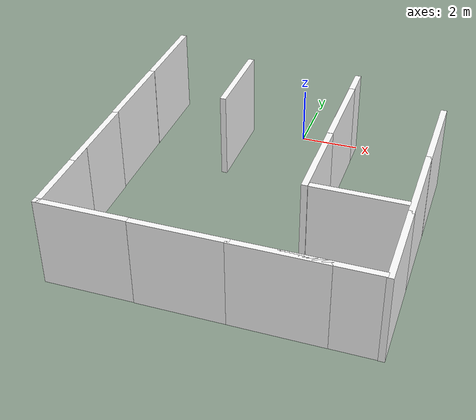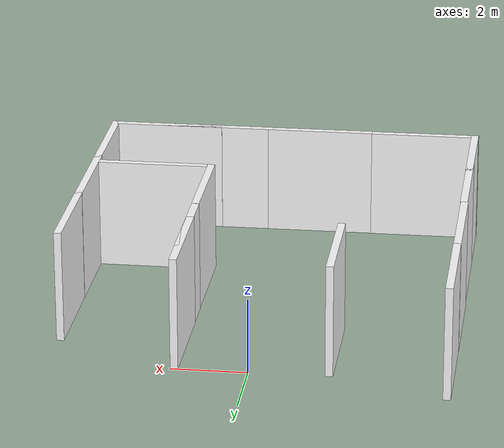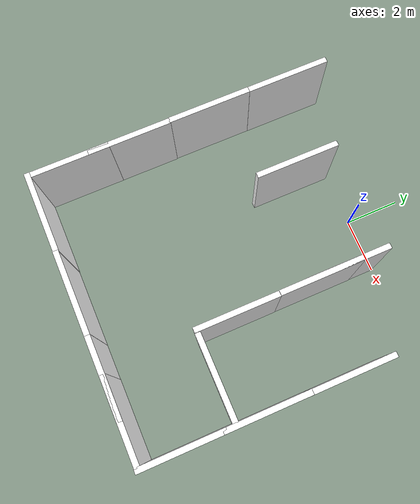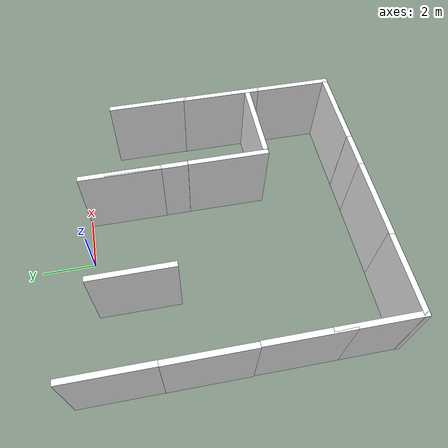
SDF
<sdf version="1.6">
 <world name="default">
  <model name="brick_box_3x0_2x3_0_clone_2_clone_1">
   <link name="chassis">
    <pose>0 0 1.5 0 -0 0</pose>
    <velocity_decay><linear>0</linear><angular>0</angular></velocity_decay>
    <inertial>
     <mass>1</mass>
     <inertia><ixx>1</ixx><ixy>0</ixy><ixz>0</ixz><iyy>1</iyy><iyz>0</iyz><izz>1</izz></inertia>
    </inertial>
    <visual name="visual">
     <geometry>
      <mesh><uri>model://brick_box_3x1x3/meshes/simple_box.dae</uri><scale>3 0.2 3</scale></mesh>
     </geometry>
     <material>
      <script>
       <uri>model://brick_box_3x1x3/materials/scripts</uri>
       <uri>model://brick_box_3x1x3/materials/textures</uri>
       <name>BrickBox/Diffuse</name>
      </script>
      <shader type="vertex"><normal_map>__default__</normal_map></shader>
      <ambient>1 1 1 1</ambient>
      <diffuse>1 1 1 1</diffuse>
      <specular>0 0 0 1</specular>
      <emissive>0 0 0 1</emissive>
     </material>
    </visual>
    <collision name="collision">
     <geometry><box><size>3 0.2 3</size></box></geometry>
     <surface>
      <friction>
       <ode><mu>1</mu><mu2>1</mu2><fdir1>0 0 0</fdir1><slip1>0</slip1><slip2>0</slip2></ode>
       <torsional>
        <coefficient>1</coefficient>
        <patch_radius>0</patch_radius>
        <surface_radius>0</surface_radius>
        <use_patch_radius>1</use_patch_radius>
        <ode><slip>0</slip></ode>
       </torsional>
      </friction>
      <bounce><restitution_coefficient>0</restitution_coefficient><threshold>1e+06</threshold></bounce>
      <contact>
       <collide_without_contact>0</collide_without_contact>
       <collide_without_contact_bitmask>1</collide_without_contact_bitmask>
       <collide_bitmask>1</collide_bitmask>
       <ode>
        <soft_cfm>0</soft_cfm>
        <soft_erp>0.2</soft_erp>
        <kp>1e+13</kp>
        <kd>1</kd>
        <max_vel>0.01</max_vel>
        <min_depth>0</min_depth>
       </ode>
       <bullet>
        <split_impulse>1</split_impulse>
        <split_impulse_penetration_threshold>-0.01</split_impulse_penetration_threshold>
        <soft_cfm>0</soft_cfm>
        <soft_erp>0.2</soft_erp>
        <kp>1e+13</kp>
        <kd>1</kd>
       </bullet>
      </contact>
     </surface>
    </collision>
   </link>
   <static>1</static>
   <pose>-5.10969 -0.466869 0 0 -0 1.57</pose>
  </model>
  <model name="brick_box_3x0_2x3_0_clone_2_clone_1_clone">
   <link name="chassis">
    <pose>0 0 1.5 0 -0 0</pose>
    <velocity_decay><linear>0</linear><angular>0</angular></velocity_decay>
    <inertial>
     <mass>1</mass>
     <inertia><ixx>1</ixx><ixy>0</ixy><ixz>0</ixz><iyy>1</iyy><iyz>0</iyz><izz>1</izz></inertia>
    </inertial>
    <visual name="visual">
     <geometry>
      <mesh><uri>model://brick_box_3x1x3/meshes/simple_box.dae</uri><scale>3 0.2 3</scale></mesh>
     </geometry>
     <material>
      <script>
       <uri>model://brick_box_3x1x3/materials/scripts</uri>
       <uri>model://brick_box_3x1x3/materials/textures</uri>
       <name>BrickBox/Diffuse</name>
      </script>
      <shader type="vertex"><normal_map>__default__</normal_map></shader>
      <ambient>1 1 1 1</ambient>
      <diffuse>1 1 1 1</diffuse>
      <specular>0 0 0 1</specular>
      <emissive>0 0 0 1</emissive>
     </material>
    </visual>
    <collision name="collision">
     <geometry><box><size>3 0.2 3</size></box></geometry>
     <surface>
      <friction>
       <ode><mu>1</mu><mu2>1</mu2><fdir1>0 0 0</fdir1><slip1>0</slip1><slip2>0</slip2></ode>
       <torsional>
        <coefficient>1</coefficient>
        <patch_radius>0</patch_radius>
        <surface_radius>0</surface_radius>
        <use_patch_radius>1</use_patch_radius>
        <ode><slip>0</slip></ode>
       </torsional>
      </friction>
      <bounce><restitution_coefficient>0</restitution_coefficient><threshold>1e+06</threshold></bounce>
      <contact>
       <collide_without_contact>0</collide_without_contact>
       <collide_without_contact_bitmask>1</collide_without_contact_bitmask>
       <collide_bitmask>1</collide_bitmask>
       <ode>
        <soft_cfm>0</soft_cfm>
        <soft_erp>0.2</soft_erp>
        <kp>1e+13</kp>
        <kd>1</kd>
        <max_vel>0.01</max_vel>
        <min_depth>0</min_depth>
       </ode>
       <bullet>
        <split_impulse>1</split_impulse>
        <split_impulse_penetration_threshold>-0.01</split_impulse_penetration_threshold>
        <soft_cfm>0</soft_cfm>
        <soft_erp>0.2</soft_erp>
        <kp>1e+13</kp>
        <kd>1</kd>
       </bullet>
      </contact>
     </surface>
    </collision>
   </link>
   <static>1</static>
   <pose>-5.11767 -3.46485 0 0 -0 1.57</pose>
  </model>
  <model name="brick_box_3x0_2x3_0_clone_2_clone_1_clone_0">
   <link name="chassis">
    <pose>0 0 1.5 0 -0 0</pose>
    <velocity_decay><linear>0</linear><angular>0</angular></velocity_decay>
    <inertial>
     <mass>1</mass>
     <inertia><ixx>1</ixx><ixy>0</ixy><ixz>0</ixz><iyy>1</iyy><iyz>0</iyz><izz>1</izz></inertia>
    </inertial>
    <visual name="visual">
     <geometry>
      <mesh><uri>model://brick_box_3x1x3/meshes/simple_box.dae</uri><scale>3 0.2 3</scale></mesh>
     </geometry>
     <material>
      <script>
       <uri>model://brick_box_3x1x3/materials/scripts</uri>
       <uri>model://brick_box_3x1x3/materials/textures</uri>
       <name>BrickBox/Diffuse</name>
      </script>
      <shader type="vertex"><normal_map>__default__</normal_map></shader>
      <ambient>1 1 1 1</ambient>
      <diffuse>1 1 1 1</diffuse>
      <specular>0 0 0 1</specular>
      <emissive>0 0 0 1</emissive>
     </material>
    </visual>
    <collision name="collision">
     <geometry><box><size>3 0.2 3</size></box></geometry>
     <surface>
      <friction>
       <ode><mu>1</mu><mu2>1</mu2><fdir1>0 0 0</fdir1><slip1>0</slip1><slip2>0</slip2></ode>
       <torsional>
        <coefficient>1</coefficient>
        <patch_radius>0</patch_radius>
        <surface_radius>0</surface_radius>
        <use_patch_radius>1</use_patch_radius>
        <ode><slip>0</slip></ode>
       </torsional>
      </friction>
      <bounce><restitution_coefficient>0</restitution_coefficient><threshold>1e+06</threshold></bounce>
      <contact>
       <collide_without_contact>0</collide_without_contact>
       <collide_without_contact_bitmask>1</collide_without_contact_bitmask>
       <collide_bitmask>1</collide_bitmask>
       <ode>
        <soft_cfm>0</soft_cfm>
        <soft_erp>0.2</soft_erp>
        <kp>1e+13</kp>
        <kd>1</kd>
        <max_vel>0.01</max_vel>
        <min_depth>0</min_depth>
       </ode>
       <bullet>
        <split_impulse>1</split_impulse>
        <split_impulse_penetration_threshold>-0.01</split_impulse_penetration_threshold>
        <soft_cfm>0</soft_cfm>
        <soft_erp>0.2</soft_erp>
        <kp>1e+13</kp>
        <kd>1</kd>
       </bullet>
      </contact>
     </surface>
    </collision>
   </link>
   <static>1</static>
   <pose>-5.10293 -6.4385 0 0 -0 1.57</pose>
  </model>
  <model name="brick_box_3x0_2x3_0_clone_2_clone_1_clone_1">
   <link name="chassis">
    <pose>0 0 1.5 0 -0 0</pose>
    <velocity_decay><linear>0</linear><angular>0</angular></velocity_decay>
    <inertial>
     <mass>1</mass>
     <inertia><ixx>1</ixx><ixy>0</ixy><ixz>0</ixz><iyy>1</iyy><iyz>0</iyz><izz>1</izz></inertia>
    </inertial>
    <visual name="visual">
     <geometry>
      <mesh><uri>model://brick_box_3x1x3/meshes/simple_box.dae</uri><scale>3 0.2 3</scale></mesh>
     </geometry>
     <material>
      <script>
       <uri>model://brick_box_3x1x3/materials/scripts</uri>
       <uri>model://brick_box_3x1x3/materials/textures</uri>
       <name>BrickBox/Diffuse</name>
      </script>
      <shader type="vertex"><normal_map>__default__</normal_map></shader>
      <ambient>1 1 1 1</ambient>
      <diffuse>1 1 1 1</diffuse>
      <specular>0 0 0 1</specular>
      <emissive>0 0 0 1</emissive>
     </material>
    </visual>
    <collision name="collision">
     <geometry><box><size>3 0.2 3</size></box></geometry>
     <surface>
      <friction>
       <ode><mu>1</mu><mu2>1</mu2><fdir1>0 0 0</fdir1><slip1>0</slip1><slip2>0</slip2></ode>
       <torsional>
        <coefficient>1</coefficient>
        <patch_radius>0</patch_radius>
        <surface_radius>0</surface_radius>
        <use_patch_radius>1</use_patch_radius>
        <ode><slip>0</slip></ode>
       </torsional>
      </friction>
      <bounce><restitution_coefficient>0</restitution_coefficient><threshold>1e+06</threshold></bounce>
      <contact>
       <collide_without_contact>0</collide_without_contact>
       <collide_without_contact_bitmask>1</collide_without_contact_bitmask>
       <collide_bitmask>1</collide_bitmask>
       <ode>
        <soft_cfm>0</soft_cfm>
        <soft_erp>0.2</soft_erp>
        <kp>1e+13</kp>
        <kd>1</kd>
        <max_vel>0.01</max_vel>
        <min_depth>0</min_depth>
       </ode>
       <bullet>
        <split_impulse>1</split_impulse>
        <split_impulse_penetration_threshold>-0.01</split_impulse_penetration_threshold>
        <soft_cfm>0</soft_cfm>
        <soft_erp>0.2</soft_erp>
        <kp>1e+13</kp>
        <kd>1</kd>
       </bullet>
      </contact>
     </surface>
    </collision>
   </link>
   <static>1</static>
   <pose>-5.10132 -8.68929 0 0 -0 1.57</pose>
  </model>
  <model name="brick_box_3x0_2x3_0_clone_1_clone">
   <link name="chassis">
    <pose>0 0 1.5 0 -0 0</pose>
    <velocity_decay><linear>0</linear><angular>0</angular></velocity_decay>
    <inertial>
     <mass>1</mass>
     <inertia><ixx>1</ixx><ixy>0</ixy><ixz>0</ixz><iyy>1</iyy><iyz>0</iyz><izz>1</izz></inertia>
    </inertial>
    <visual name="visual">
     <geometry>
      <mesh><uri>model://brick_box_3x1x3/meshes/simple_box.dae</uri><scale>3 0.2 3</scale></mesh>
     </geometry>
     <material>
      <script>
       <uri>model://brick_box_3x1x3/materials/scripts</uri>
       <uri>model://brick_box_3x1x3/materials/textures</uri>
       <name>BrickBox/Diffuse</name>
      </script>
      <shader type="vertex"><normal_map>__default__</normal_map></shader>
      <ambient>1 1 1 1</ambient>
      <diffuse>1 1 1 1</diffuse>
      <specular>0 0 0 1</specular>
      <emissive>0 0 0 1</emissive>
     </material>
    </visual>
    <collision name="collision">
     <geometry><box><size>3 0.2 3</size></box></geometry>
     <surface>
      <friction>
       <ode><mu>1</mu><mu2>1</mu2><fdir1>0 0 0</fdir1><slip1>0</slip1><slip2>0</slip2></ode>
       <torsional>
        <coefficient>1</coefficient>
        <patch_radius>0</patch_radius>
        <surface_radius>0</surface_radius>
        <use_patch_radius>1</use_patch_radius>
        <ode><slip>0</slip></ode>
       </torsional>
      </friction>
      <bounce><restitution_coefficient>0</restitution_coefficient><threshold>1e+06</threshold></bounce>
      <contact>
       <collide_without_contact>0</collide_without_contact>
       <collide_without_contact_bitmask>1</collide_without_contact_bitmask>
       <collide_bitmask>1</collide_bitmask>
       <ode>
        <soft_cfm>0</soft_cfm>
        <soft_erp>0.2</soft_erp>
        <kp>1e+13</kp>
        <kd>1</kd>
        <max_vel>0.01</max_vel>
        <min_depth>0</min_depth>
       </ode>
       <bullet>
        <split_impulse>1</split_impulse>
        <split_impulse_penetration_threshold>-0.01</split_impulse_penetration_threshold>
        <soft_cfm>0</soft_cfm>
        <soft_erp>0.2</soft_erp>
        <kp>1e+13</kp>
        <kd>1</kd>
       </bullet>
      </contact>
     </surface>
    </collision>
   </link>
   <static>1</static>
   <pose>-3.71023 -10.0958 0 0 -0 0</pose>
  </model>
  <model name="brick_box_3x0_2x3_0_clone_1_clone_clone">
   <link name="chassis">
    <pose>0 0 1.5 0 -0 0</pose>
    <velocity_decay><linear>0</linear><angular>0</angular></velocity_decay>
    <inertial>
     <mass>1</mass>
     <inertia><ixx>1</ixx><ixy>0</ixy><ixz>0</ixz><iyy>1</iyy><iyz>0</iyz><izz>1</izz></inertia>
    </inertial>
    <visual name="visual">
     <geometry>
      <mesh><uri>model://brick_box_3x1x3/meshes/simple_box.dae</uri><scale>3 0.2 3</scale></mesh>
     </geometry>
     <material>
      <script>
       <uri>model://brick_box_3x1x3/materials/scripts</uri>
       <uri>model://brick_box_3x1x3/materials/textures</uri>
       <name>BrickBox/Diffuse</name>
      </script>
      <shader type="vertex"><normal_map>__default__</normal_map></shader>
      <ambient>1 1 1 1</ambient>
      <diffuse>1 1 1 1</diffuse>
      <specular>0 0 0 1</specular>
      <emissive>0 0 0 1</emissive>
     </material>
    </visual>
    <collision name="collision">
     <geometry><box><size>3 0.2 3</size></box></geometry>
     <surface>
      <friction>
       <ode><mu>1</mu><mu2>1</mu2><fdir1>0 0 0</fdir1><slip1>0</slip1><slip2>0</slip2></ode>
       <torsional>
        <coefficient>1</coefficient>
        <patch_radius>0</patch_radius>
        <surface_radius>0</surface_radius>
        <use_patch_radius>1</use_patch_radius>
        <ode><slip>0</slip></ode>
       </torsional>
      </friction>
      <bounce><restitution_coefficient>0</restitution_coefficient><threshold>1e+06</threshold></bounce>
      <contact>
       <collide_without_contact>0</collide_without_contact>
       <collide_without_contact_bitmask>1</collide_without_contact_bitmask>
       <collide_bitmask>1</collide_bitmask>
       <ode>
        <soft_cfm>0</soft_cfm>
        <soft_erp>0.2</soft_erp>
        <kp>1e+13</kp>
        <kd>1</kd>
        <max_vel>0.01</max_vel>
        <min_depth>0</min_depth>
       </ode>
       <bullet>
        <split_impulse>1</split_impulse>
        <split_impulse_penetration_threshold>-0.01</split_impulse_penetration_threshold>
        <soft_cfm>0</soft_cfm>
        <soft_erp>0.2</soft_erp>
        <kp>1e+13</kp>
        <kd>1</kd>
       </bullet>
      </contact>
     </surface>
    </collision>
   </link>
   <static>1</static>
   <pose>-0.774829 -10.1072 0 0 -0 0</pose>
  </model>
  <model name="brick_box_3x0_2x3_0_clone_1_clone_clone_0">
   <link name="chassis">
    <pose>0 0 1.5 0 -0 0</pose>
    <velocity_decay><linear>0</linear><angular>0</angular></velocity_decay>
    <inertial>
     <mass>1</mass>
     <inertia><ixx>1</ixx><ixy>0</ixy><ixz>0</ixz><iyy>1</iyy><iyz>0</iyz><izz>1</izz></inertia>
    </inertial>
    <visual name="visual">
     <geometry>
      <mesh><uri>model://brick_box_3x1x3/meshes/simple_box.dae</uri><scale>3 0.2 3</scale></mesh>
     </geometry>
     <material>
      <script>
       <uri>model://brick_box_3x1x3/materials/scripts</uri>
       <uri>model://brick_box_3x1x3/materials/textures</uri>
       <name>BrickBox/Diffuse</name>
      </script>
      <shader type="vertex"><normal_map>__default__</normal_map></shader>
      <ambient>1 1 1 1</ambient>
      <diffuse>1 1 1 1</diffuse>
      <specular>0 0 0 1</specular>
      <emissive>0 0 0 1</emissive>
     </material>
    </visual>
    <collision name="collision">
     <geometry><box><size>3 0.2 3</size></box></geometry>
     <surface>
      <friction>
       <ode><mu>1</mu><mu2>1</mu2><fdir1>0 0 0</fdir1><slip1>0</slip1><slip2>0</slip2></ode>
       <torsional>
        <coefficient>1</coefficient>
        <patch_radius>0</patch_radius>
        <surface_radius>0</surface_radius>
        <use_patch_radius>1</use_patch_radius>
        <ode><slip>0</slip></ode>
       </torsional>
      </friction>
      <bounce><restitution_coefficient>0</restitution_coefficient><threshold>1e+06</threshold></bounce>
      <contact>
       <collide_without_contact>0</collide_without_contact>
       <collide_without_contact_bitmask>1</collide_without_contact_bitmask>
       <collide_bitmask>1</collide_bitmask>
       <ode>
        <soft_cfm>0</soft_cfm>
        <soft_erp>0.2</soft_erp>
        <kp>1e+13</kp>
        <kd>1</kd>
        <max_vel>0.01</max_vel>
        <min_depth>0</min_depth>
       </ode>
       <bullet>
        <split_impulse>1</split_impulse>
        <split_impulse_penetration_threshold>-0.01</split_impulse_penetration_threshold>
        <soft_cfm>0</soft_cfm>
        <soft_erp>0.2</soft_erp>
        <kp>1e+13</kp>
        <kd>1</kd>
       </bullet>
      </contact>
     </surface>
    </collision>
   </link>
   <static>1</static>
   <pose>2.09652 -10.1097 0 0 -0 0</pose>
  </model>
  <model name="brick_box_3x0_2x3_0_clone_1_clone_clone_1">
   <link name="chassis">
    <pose>0 0 1.5 0 -0 0</pose>
    <velocity_decay><linear>0</linear><angular>0</angular></velocity_decay>
    <inertial>
     <mass>1</mass>
     <inertia><ixx>1</ixx><ixy>0</ixy><ixz>0</ixz><iyy>1</iyy><iyz>0</iyz><izz>1</izz></inertia>
    </inertial>
    <visual name="visual">
     <geometry>
      <mesh><uri>model://brick_box_3x1x3/meshes/simple_box.dae</uri><scale>3 0.2 3</scale></mesh>
     </geometry>
     <material>
      <script>
       <uri>model://brick_box_3x1x3/materials/scripts</uri>
       <uri>model://brick_box_3x1x3/materials/textures</uri>
       <name>BrickBox/Diffuse</name>
      </script>
      <shader type="vertex"><normal_map>__default__</normal_map></shader>
      <ambient>1 1 1 1</ambient>
      <diffuse>1 1 1 1</diffuse>
      <specular>0 0 0 1</specular>
      <emissive>0 0 0 1</emissive>
     </material>
    </visual>
    <collision name="collision">
     <geometry><box><size>3 0.2 3</size></box></geometry>
     <surface>
      <friction>
       <ode><mu>1</mu><mu2>1</mu2><fdir1>0 0 0</fdir1><slip1>0</slip1><slip2>0</slip2></ode>
       <torsional>
        <coefficient>1</coefficient>
        <patch_radius>0</patch_radius>
        <surface_radius>0</surface_radius>
        <use_patch_radius>1</use_patch_radius>
        <ode><slip>0</slip></ode>
       </torsional>
      </friction>
      <bounce><restitution_coefficient>0</restitution_coefficient><threshold>1e+06</threshold></bounce>
      <contact>
       <collide_without_contact>0</collide_without_contact>
       <collide_without_contact_bitmask>1</collide_without_contact_bitmask>
       <collide_bitmask>1</collide_bitmask>
       <ode>
        <soft_cfm>0</soft_cfm>
        <soft_erp>0.2</soft_erp>
        <kp>1e+13</kp>
        <kd>1</kd>
        <max_vel>0.01</max_vel>
        <min_depth>0</min_depth>
       </ode>
       <bullet>
        <split_impulse>1</split_impulse>
        <split_impulse_penetration_threshold>-0.01</split_impulse_penetration_threshold>
        <soft_cfm>0</soft_cfm>
        <soft_erp>0.2</soft_erp>
        <kp>1e+13</kp>
        <kd>1</kd>
       </bullet>
      </contact>
     </surface>
    </collision>
   </link>
   <static>1</static>
   <pose>3.54888 -10.1055 0 0 -0 0</pose>
  </model>
  <model name="brick_box_3x0_2x3_0_clone_2_clone_1_clone_1_clone">
   <link name="chassis">
    <pose>0 0 1.5 0 -0 0</pose>
    <velocity_decay><linear>0</linear><angular>0</angular></velocity_decay>
    <inertial>
     <mass>1</mass>
     <inertia><ixx>1</ixx><ixy>0</ixy><ixz>0</ixz><iyy>1</iyy><iyz>0</iyz><izz>1</izz></inertia>
    </inertial>
    <visual name="visual">
     <geometry>
      <mesh><uri>model://brick_box_3x1x3/meshes/simple_box.dae</uri><scale>3 0.2 3</scale></mesh>
     </geometry>
     <material>
      <script>
       <uri>model://brick_box_3x1x3/materials/scripts</uri>
       <uri>model://brick_box_3x1x3/materials/textures</uri>
       <name>BrickBox/Diffuse</name>
      </script>
      <shader type="vertex"><normal_map>__default__</normal_map></shader>
      <ambient>1 1 1 1</ambient>
      <diffuse>1 1 1 1</diffuse>
      <specular>0 0 0 1</specular>
      <emissive>0 0 0 1</emissive>
     </material>
    </visual>
    <collision name="collision">
     <geometry><box><size>3 0.2 3</size></box></geometry>
     <surface>
      <friction>
       <ode><mu>1</mu><mu2>1</mu2><fdir1>0 0 0</fdir1><slip1>0</slip1><slip2>0</slip2></ode>
       <torsional>
        <coefficient>1</coefficient>
        <patch_radius>0</patch_radius>
        <surface_radius>0</surface_radius>
        <use_patch_radius>1</use_patch_radius>
        <ode><slip>0</slip></ode>
       </torsional>
      </friction>
      <bounce><restitution_coefficient>0</restitution_coefficient><threshold>1e+06</threshold></bounce>
      <contact>
       <collide_without_contact>0</collide_without_contact>
       <collide_without_contact_bitmask>1</collide_without_contact_bitmask>
       <collide_bitmask>1</collide_bitmask>
       <ode>
        <soft_cfm>0</soft_cfm>
        <soft_erp>0.2</soft_erp>
        <kp>1e+13</kp>
        <kd>1</kd>
        <max_vel>0.01</max_vel>
        <min_depth>0</min_depth>
       </ode>
       <bullet>
        <split_impulse>1</split_impulse>
        <split_impulse_penetration_threshold>-0.01</split_impulse_penetration_threshold>
        <soft_cfm>0</soft_cfm>
        <soft_erp>0.2</soft_erp>
        <kp>1e+13</kp>
        <kd>1</kd>
       </bullet>
      </contact>
     </surface>
    </collision>
   </link>
   <static>1</static>
   <pose>5.10532 -8.71765 0 0 -0 1.57</pose>
  </model>
  <model name="brick_box_3x0_2x3_0_clone_2_clone_1_clone_1_clone_0">
   <link name="chassis">
    <pose>0 0 1.5 0 -0 0</pose>
    <velocity_decay><linear>0</linear><angular>0</angular></velocity_decay>
    <inertial>
     <mass>1</mass>
     <inertia><ixx>1</ixx><ixy>0</ixy><ixz>0</ixz><iyy>1</iyy><iyz>0</iyz><izz>1</izz></inertia>
    </inertial>
    <visual name="visual">
     <geometry>
      <mesh><uri>model://brick_box_3x1x3/meshes/simple_box.dae</uri><scale>3 0.2 3</scale></mesh>
     </geometry>
     <material>
      <script>
       <uri>model://brick_box_3x1x3/materials/scripts</uri>
       <uri>model://brick_box_3x1x3/materials/textures</uri>
       <name>BrickBox/Diffuse</name>
      </script>
      <shader type="vertex"><normal_map>__default__</normal_map></shader>
      <ambient>1 1 1 1</ambient>
      <diffuse>1 1 1 1</diffuse>
      <specular>0 0 0 1</specular>
      <emissive>0 0 0 1</emissive>
     </material>
    </visual>
    <collision name="collision">
     <geometry><box><size>3 0.2 3</size></box></geometry>
     <surface>
      <friction>
       <ode><mu>1</mu><mu2>1</mu2><fdir1>0 0 0</fdir1><slip1>0</slip1><slip2>0</slip2></ode>
       <torsional>
        <coefficient>1</coefficient>
        <patch_radius>0</patch_radius>
        <surface_radius>0</surface_radius>
        <use_patch_radius>1</use_patch_radius>
        <ode><slip>0</slip></ode>
       </torsional>
      </friction>
      <bounce><restitution_coefficient>0</restitution_coefficient><threshold>1e+06</threshold></bounce>
      <contact>
       <collide_without_contact>0</collide_without_contact>
       <collide_without_contact_bitmask>1</collide_without_contact_bitmask>
       <collide_bitmask>1</collide_bitmask>
       <ode>
        <soft_cfm>0</soft_cfm>
        <soft_erp>0.2</soft_erp>
        <kp>1e+13</kp>
        <kd>1</kd>
        <max_vel>0.01</max_vel>
        <min_depth>0</min_depth>
       </ode>
       <bullet>
        <split_impulse>1</split_impulse>
        <split_impulse_penetration_threshold>-0.01</split_impulse_penetration_threshold>
        <soft_cfm>0</soft_cfm>
        <soft_erp>0.2</soft_erp>
        <kp>1e+13</kp>
        <kd>1</kd>
       </bullet>
      </contact>
     </surface>
    </collision>
   </link>
   <static>1</static>
   <pose>5.10701 -5.83783 0 0 -0 1.57</pose>
  </model>
  <model name="brick_box_3x0_2x3_0_clone_2_clone_1_clone_1_clone_1">
   <link name="chassis">
    <pose>0 0 1.5 0 -0 0</pose>
    <velocity_decay><linear>0</linear><angular>0</angular></velocity_decay>
    <inertial>
     <mass>1</mass>
     <inertia><ixx>1</ixx><ixy>0</ixy><ixz>0</ixz><iyy>1</iyy><iyz>0</iyz><izz>1</izz></inertia>
    </inertial>
    <visual name="visual">
     <geometry>
      <mesh><uri>model://brick_box_3x1x3/meshes/simple_box.dae</uri><scale>3 0.2 3</scale></mesh>
     </geometry>
     <material>
      <script>
       <uri>model://brick_box_3x1x3/materials/scripts</uri>
       <uri>model://brick_box_3x1x3/materials/textures</uri>
       <name>BrickBox/Diffuse</name>
      </script>
      <shader type="vertex"><normal_map>__default__</normal_map></shader>
      <ambient>1 1 1 1</ambient>
      <diffuse>1 1 1 1</diffuse>
      <specular>0 0 0 1</specular>
      <emissive>0 0 0 1</emissive>
     </material>
    </visual>
    <collision name="collision">
     <geometry><box><size>3 0.2 3</size></box></geometry>
     <surface>
      <friction>
       <ode><mu>1</mu><mu2>1</mu2><fdir1>0 0 0</fdir1><slip1>0</slip1><slip2>0</slip2></ode>
       <torsional>
        <coefficient>1</coefficient>
        <patch_radius>0</patch_radius>
        <surface_radius>0</surface_radius>
        <use_patch_radius>1</use_patch_radius>
        <ode><slip>0</slip></ode>
       </torsional>
      </friction>
      <bounce><restitution_coefficient>0</restitution_coefficient><threshold>1e+06</threshold></bounce>
      <contact>
       <collide_without_contact>0</collide_without_contact>
       <collide_without_contact_bitmask>1</collide_without_contact_bitmask>
       <collide_bitmask>1</collide_bitmask>
       <ode>
        <soft_cfm>0</soft_cfm>
        <soft_erp>0.2</soft_erp>
        <kp>1e+13</kp>
        <kd>1</kd>
        <max_vel>0.01</max_vel>
        <min_depth>0</min_depth>
       </ode>
       <bullet>
        <split_impulse>1</split_impulse>
        <split_impulse_penetration_threshold>-0.01</split_impulse_penetration_threshold>
        <soft_cfm>0</soft_cfm>
        <soft_erp>0.2</soft_erp>
        <kp>1e+13</kp>
        <kd>1</kd>
       </bullet>
      </contact>
     </surface>
    </collision>
   </link>
   <static>1</static>
   <pose>5.11388 -2.93601 0 0 -0 1.57</pose>
  </model>
  <model name="brick_box_3x0_2x3_0_clone_0_clone_1">
   <link name="chassis">
    <pose>0 0 1.5 0 -0 0</pose>
    <velocity_decay><linear>0</linear><angular>0</angular></velocity_decay>
    <inertial>
     <mass>1</mass>
     <inertia><ixx>1</ixx><ixy>0</ixy><ixz>0</ixz><iyy>1</iyy><iyz>0</iyz><izz>1</izz></inertia>
    </inertial>
    <visual name="visual">
     <geometry>
      <mesh><uri>model://brick_box_3x1x3/meshes/simple_box.dae</uri><scale>3 0.2 3</scale></mesh>
     </geometry>
     <material>
      <script>
       <uri>model://brick_box_3x1x3/materials/scripts</uri>
       <uri>model://brick_box_3x1x3/materials/textures</uri>
       <name>BrickBox/Diffuse</name>
      </script>
      <shader type="vertex"><normal_map>__default__</normal_map></shader>
      <ambient>1 1 1 1</ambient>
      <diffuse>1 1 1 1</diffuse>
      <specular>0 0 0 1</specular>
      <emissive>0 0 0 1</emissive>
     </material>
    </visual>
    <collision name="collision">
     <geometry><box><size>3 0.2 3</size></box></geometry>
     <surface>
      <friction>
       <ode><mu>1</mu><mu2>1</mu2><fdir1>0 0 0</fdir1><slip1>0</slip1><slip2>0</slip2></ode>
       <torsional>
        <coefficient>1</coefficient>
        <patch_radius>0</patch_radius>
        <surface_radius>0</surface_radius>
        <use_patch_radius>1</use_patch_radius>
        <ode><slip>0</slip></ode>
       </torsional>
      </friction>
      <bounce><restitution_coefficient>0</restitution_coefficient><threshold>1e+06</threshold></bounce>
      <contact>
       <collide_without_contact>0</collide_without_contact>
       <collide_without_contact_bitmask>1</collide_without_contact_bitmask>
       <collide_bitmask>1</collide_bitmask>
       <ode>
        <soft_cfm>0</soft_cfm>
        <soft_erp>0.2</soft_erp>
        <kp>1e+13</kp>
        <kd>1</kd>
        <max_vel>0.01</max_vel>
        <min_depth>0</min_depth>
       </ode>
       <bullet>
        <split_impulse>1</split_impulse>
        <split_impulse_penetration_threshold>-0.01</split_impulse_penetration_threshold>
        <soft_cfm>0</soft_cfm>
        <soft_erp>0.2</soft_erp>
        <kp>1e+13</kp>
        <kd>1</kd>
       </bullet>
      </contact>
     </surface>
    </collision>
   </link>
   <static>1</static>
   <pose>3.52284 -6.89191 0 0 -0 0</pose>
  </model>
  <model name="brick_box_3x0_2x3_0_clone_2_clone_1_clone_1_clone_0_clone">
   <link name="chassis">
    <pose>0 0 1.5 0 -0 0</pose>
    <velocity_decay><linear>0</linear><angular>0</angular></velocity_decay>
    <inertial>
     <mass>1</mass>
     <inertia><ixx>1</ixx><ixy>0</ixy><ixz>0</ixz><iyy>1</iyy><iyz>0</iyz><izz>1</izz></inertia>
    </inertial>
    <visual name="visual">
     <geometry>
      <mesh><uri>model://brick_box_3x1x3/meshes/simple_box.dae</uri><scale>3 0.2 3</scale></mesh>
     </geometry>
     <material>
      <script>
       <uri>model://brick_box_3x1x3/materials/scripts</uri>
       <uri>model://brick_box_3x1x3/materials/textures</uri>
       <name>BrickBox/Diffuse</name>
      </script>
      <shader type="vertex"><normal_map>__default__</normal_map></shader>
      <ambient>1 1 1 1</ambient>
      <diffuse>1 1 1 1</diffuse>
      <specular>0 0 0 1</specular>
      <emissive>0 0 0 1</emissive>
     </material>
    </visual>
    <collision name="collision">
     <geometry><box><size>3 0.2 3</size></box></geometry>
     <surface>
      <friction>
       <ode><mu>1</mu><mu2>1</mu2><fdir1>0 0 0</fdir1><slip1>0</slip1><slip2>0</slip2></ode>
       <torsional>
        <coefficient>1</coefficient>
        <patch_radius>0</patch_radius>
        <surface_radius>0</surface_radius>
        <use_patch_radius>1</use_patch_radius>
        <ode><slip>0</slip></ode>
       </torsional>
      </friction>
      <bounce><restitution_coefficient>0</restitution_coefficient><threshold>1e+06</threshold></bounce>
      <contact>
       <collide_without_contact>0</collide_without_contact>
       <collide_without_contact_bitmask>1</collide_without_contact_bitmask>
       <collide_bitmask>1</collide_bitmask>
       <ode>
        <soft_cfm>0</soft_cfm>
        <soft_erp>0.2</soft_erp>
        <kp>1e+13</kp>
        <kd>1</kd>
        <max_vel>0.01</max_vel>
        <min_depth>0</min_depth>
       </ode>
       <bullet>
        <split_impulse>1</split_impulse>
        <split_impulse_penetration_threshold>-0.01</split_impulse_penetration_threshold>
        <soft_cfm>0</soft_cfm>
        <soft_erp>0.2</soft_erp>
        <kp>1e+13</kp>
        <kd>1</kd>
       </bullet>
      </contact>
     </surface>
    </collision>
   </link>
   <static>1</static>
   <pose>1.91273 -5.48124 0 0 -0 1.57</pose>
  </model>
  <model name="brick_box_3x0_2x3_0_clone_2_clone_1_clone_1_clone_0_clone_clone">
   <link name="chassis">
    <pose>0 0 1.5 0 -0 0</pose>
    <velocity_decay><linear>0</linear><angular>0</angular></velocity_decay>
    <inertial>
     <mass>1</mass>
     <inertia><ixx>1</ixx><ixy>0</ixy><ixz>0</ixz><iyy>1</iyy><iyz>0</iyz><izz>1</izz></inertia>
    </inertial>
    <visual name="visual">
     <geometry>
      <mesh><uri>model://brick_box_3x1x3/meshes/simple_box.dae</uri><scale>3 0.2 3</scale></mesh>
     </geometry>
     <material>
      <script>
       <uri>model://brick_box_3x1x3/materials/scripts</uri>
       <uri>model://brick_box_3x1x3/materials/textures</uri>
       <name>BrickBox/Diffuse</name>
      </script>
      <shader type="vertex"><normal_map>__default__</normal_map></shader>
      <ambient>1 1 1 1</ambient>
      <diffuse>1 1 1 1</diffuse>
      <specular>0 0 0 1</specular>
      <emissive>0 0 0 1</emissive>
     </material>
    </visual>
    <collision name="collision">
     <geometry><box><size>3 0.2 3</size></box></geometry>
     <surface>
      <friction>
       <ode><mu>1</mu><mu2>1</mu2><fdir1>0 0 0</fdir1><slip1>0</slip1><slip2>0</slip2></ode>
       <torsional>
        <coefficient>1</coefficient>
        <patch_radius>0</patch_radius>
        <surface_radius>0</surface_radius>
        <use_patch_radius>1</use_patch_radius>
        <ode><slip>0</slip></ode>
       </torsional>
      </friction>
      <bounce><restitution_coefficient>0</restitution_coefficient><threshold>1e+06</threshold></bounce>
      <contact>
       <collide_without_contact>0</collide_without_contact>
       <collide_without_contact_bitmask>1</collide_without_contact_bitmask>
       <collide_bitmask>1</collide_bitmask>
       <ode>
        <soft_cfm>0</soft_cfm>
        <soft_erp>0.2</soft_erp>
        <kp>1e+13</kp>
        <kd>1</kd>
        <max_vel>0.01</max_vel>
        <min_depth>0</min_depth>
       </ode>
       <bullet>
        <split_impulse>1</split_impulse>
        <split_impulse_penetration_threshold>-0.01</split_impulse_penetration_threshold>
        <soft_cfm>0</soft_cfm>
        <soft_erp>0.2</soft_erp>
        <kp>1e+13</kp>
        <kd>1</kd>
       </bullet>
      </contact>
     </surface>
    </collision>
   </link>
   <static>1</static>
   <pose>1.9085 -2.47703 0 0 -0 1.57</pose>
  </model>
  <model name="brick_box_3x0_2x3_0_clone_2_clone_1_clone_1_clone_0_clone_clone_clone">
   <link name="chassis">
    <pose>0 0 1.5 0 -0 0</pose>
    <velocity_decay><linear>0</linear><angular>0</angular></velocity_decay>
    <inertial>
     <mass>1</mass>
     <inertia><ixx>1</ixx><ixy>0</ixy><ixz>0</ixz><iyy>1</iyy><iyz>0</iyz><izz>1</izz></inertia>
    </inertial>
    <visual name="visual">
     <geometry>
      <mesh><uri>model://brick_box_3x1x3/meshes/simple_box.dae</uri><scale>3 0.2 3</scale></mesh>
     </geometry>
     <material>
      <script>
       <uri>model://brick_box_3x1x3/materials/scripts</uri>
       <uri>model://brick_box_3x1x3/materials/textures</uri>
       <name>BrickBox/Diffuse</name>
      </script>
      <shader type="vertex"><normal_map>__default__</normal_map></shader>
      <ambient>1 1 1 1</ambient>
      <diffuse>1 1 1 1</diffuse>
      <specular>0 0 0 1</specular>
      <emissive>0 0 0 1</emissive>
     </material>
    </visual>
    <collision name="collision">
     <geometry><box><size>3 0.2 3</size></box></geometry>
     <surface>
      <friction>
       <ode><mu>1</mu><mu2>1</mu2><fdir1>0 0 0</fdir1><slip1>0</slip1><slip2>0</slip2></ode>
       <torsional>
        <coefficient>1</coefficient>
        <patch_radius>0</patch_radius>
        <surface_radius>0</surface_radius>
        <use_patch_radius>1</use_patch_radius>
        <ode><slip>0</slip></ode>
       </torsional>
      </friction>
      <bounce><restitution_coefficient>0</restitution_coefficient><threshold>1e+06</threshold></bounce>
      <contact>
       <collide_without_contact>0</collide_without_contact>
       <collide_without_contact_bitmask>1</collide_without_contact_bitmask>
       <collide_bitmask>1</collide_bitmask>
       <ode>
        <soft_cfm>0</soft_cfm>
        <soft_erp>0.2</soft_erp>
        <kp>1e+13</kp>
        <kd>1</kd>
        <max_vel>0.01</max_vel>
        <min_depth>0</min_depth>
       </ode>
       <bullet>
        <split_impulse>1</split_impulse>
        <split_impulse_penetration_threshold>-0.01</split_impulse_penetration_threshold>
        <soft_cfm>0</soft_cfm>
        <soft_erp>0.2</soft_erp>
        <kp>1e+13</kp>
        <kd>1</kd>
       </bullet>
      </contact>
     </surface>
    </collision>
   </link>
   <static>1</static>
   <pose>1.90034 -1.51141 0 0 -0 1.57</pose>
  </model>
  <model name="brick_box_3x0_2x3_0_clone_2_clone_1_clone_1_clone_0_clone_clone_clone_0">
   <link name="chassis">
    <pose>0 0 1.5 0 -0 0</pose>
    <velocity_decay><linear>0</linear><angular>0</angular></velocity_decay>
    <inertial>
     <mass>1</mass>
     <inertia><ixx>1</ixx><ixy>0</ixy><ixz>0</ixz><iyy>1</iyy><iyz>0</iyz><izz>1</izz></inertia>
    </inertial>
    <visual name="visual">
     <geometry>
      <mesh><uri>model://brick_box_3x1x3/meshes/simple_box.dae</uri><scale>3 0.2 3</scale></mesh>
     </geometry>
     <material>
      <script>
       <uri>model://brick_box_3x1x3/materials/scripts</uri>
       <uri>model://brick_box_3x1x3/materials/textures</uri>
       <name>BrickBox/Diffuse</name>
      </script>
      <shader type="vertex"><normal_map>__default__</normal_map></shader>
      <ambient>1 1 1 1</ambient>
      <diffuse>1 1 1 1</diffuse>
      <specular>0 0 0 1</specular>
      <emissive>0 0 0 1</emissive>
     </material>
    </visual>
    <collision name="collision">
     <geometry><box><size>3 0.2 3</size></box></geometry>
     <surface>
      <friction>
       <ode><mu>1</mu><mu2>1</mu2><fdir1>0 0 0</fdir1><slip1>0</slip1><slip2>0</slip2></ode>
       <torsional>
        <coefficient>1</coefficient>
        <patch_radius>0</patch_radius>
        <surface_radius>0</surface_radius>
        <use_patch_radius>1</use_patch_radius>
        <ode><slip>0</slip></ode>
       </torsional>
      </friction>
      <bounce><restitution_coefficient>0</restitution_coefficient><threshold>1e+06</threshold></bounce>
      <contact>
       <collide_without_contact>0</collide_without_contact>
       <collide_without_contact_bitmask>1</collide_without_contact_bitmask>
       <collide_bitmask>1</collide_bitmask>
       <ode>
        <soft_cfm>0</soft_cfm>
        <soft_erp>0.2</soft_erp>
        <kp>1e+13</kp>
        <kd>1</kd>
        <max_vel>0.01</max_vel>
        <min_depth>0</min_depth>
       </ode>
       <bullet>
        <split_impulse>1</split_impulse>
        <split_impulse_penetration_threshold>-0.01</split_impulse_penetration_threshold>
        <soft_cfm>0</soft_cfm>
        <soft_erp>0.2</soft_erp>
        <kp>1e+13</kp>
        <kd>1</kd>
       </bullet>
      </contact>
     </surface>
    </collision>
   </link>
   <static>1</static>
   <pose>-2.05947 -1.50852 0 0 -0 1.57</pose>
  </model>
 </world>
</sdf>
